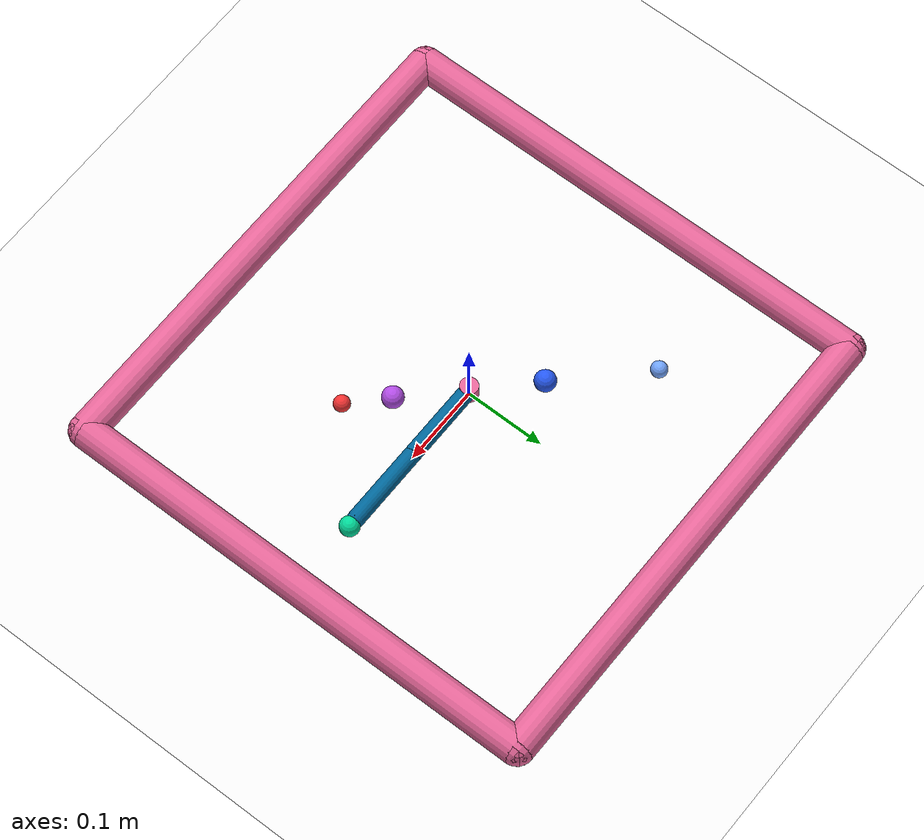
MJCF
<mujoco model="reacher_task_agnostic">
  <compiler angle="radian" inertiafromgeom="true"/>
  <default>
    <joint armature="1" damping="1" limited="true"/>
    <geom friction="1 0.1 0.1" rgba="0.7 0.7 0 1"/>
  </default>

  <option gravity="0 0 -9.81" integrator="RK4" timestep="0.01"/>

  <worldbody>
    <geom name="ground" type="plane" pos="0 0 0" size="1 1 10" rgba="0.95 0.95 0.95 1" conaffinity="0" contype="0"/>
    <geom name="sideS" type="capsule" fromto="-.3 -.3 .01 .3 -.3 .01" size=".02" rgba="0.9 0.4 0.6 1" conaffinity="0" contype="0"/>
    <geom name="sideE" type="capsule" fromto=" .3 -.3 .01 .3  .3 .01" size=".02" rgba="0.9 0.4 0.6 1" conaffinity="0" contype="0"/>
    <geom name="sideN" type="capsule" fromto="-.3  .3 .01 .3  .3 .01" size=".02" rgba="0.9 0.4 0.6 1" conaffinity="0" contype="0"/>
    <geom name="sideW" type="capsule" fromto="-.3 -.3 .01 -.3 .3 .01" size=".02" rgba="0.9 0.4 0.6 1" conaffinity="0" contype="0"/>

    <geom name="root" type="cylinder" fromto="0 0 0 0 0 0.02" size=".011" rgba="0.9 0.4 0.6 1" conaffinity="0" contype="0"/>
    <body name="body0" pos="0 0 .01">
      <joint name="joint0" type="hinge" axis="0 0 1" limited="false"/>
      <geom name="link0" type="capsule" fromto="0 0 0 0.1 0 0" size=".01" rgba="0.0 0.4 0.6 1" conaffinity="0" contype="0"/>
      <body name="body1" pos="0.1 0 0">
        <joint name="joint1" type="hinge" axis="0 0 1" range="-3.0 3.0"/>
        <geom name="link1" type="capsule" fromto="0 0 0 0.1 0 0" size=".01" rgba="0.0 0.4 0.6 1" conaffinity="0" contype="0"/>
        <body name="fingertip" pos="0.11 0 0">
          <geom name="fingertip" type="sphere" size=".012" rgba="0.0 0.85 0.6 1" contype="1" conaffinity="1"/>
        </body>
      </body>
    </body>

    <body name="target" pos=".1 -.1 .01">
      <joint name="target_x" type="slide" axis="1 0 0" range="-.27 .27" armature="0" damping="0" stiffness="0"/>
      <joint name="target_y" type="slide" axis="0 1 0" range="-.27 .27" armature="0" damping="0" stiffness="0"/>
      <geom name="target" type="sphere" size=".010" rgba="0.95 0.2 0.2 1" contype="0" conaffinity="0"/>
    </body>

    <body name="blue_goal" pos="-.15 .15 .01">
      <joint name="blue_goal_x" type="slide" axis="1 0 0" range="-.27 .27" armature="0" damping="0" stiffness="0"/>
      <joint name="blue_goal_y" type="slide" axis="0 1 0" range="-.27 .27" armature="0" damping="0" stiffness="0"/>
      <geom name="blue_goal_geom" type="sphere" size=".010" rgba="0.45 0.65 1.0 1" contype="0" conaffinity="0"/>
    </body>

    <body name="blue_object" pos="-.06 .06 .012">
      <joint name="blue_obj_x" type="slide" axis="1 0 0" range="-.26 .26" armature="0" damping="0.35" stiffness="0"/>
      <joint name="blue_obj_y" type="slide" axis="0 1 0" range="-.26 .26" armature="0" damping="0.35" stiffness="0"/>
      <geom name="blue_object_geom" type="sphere" size=".013" rgba="0.15 0.35 0.95 1" contype="1" conaffinity="1" friction="0.95 0.01 0.01"/>
    </body>

    <body name="purple_ball" pos=".06 -.06 .012">
      <joint name="purple_x" type="slide" axis="1 0 0" range="-.26 .26" armature="0" damping="0.35" stiffness="0"/>
      <joint name="purple_y" type="slide" axis="0 1 0" range="-.26 .26" armature="0" damping="0.35" stiffness="0"/>
      <geom name="purple_ball_geom" type="sphere" size=".013" rgba="0.7 0.3 0.9 1" contype="1" conaffinity="1" friction="0.95 0.01 0.01"/>
    </body>
  </worldbody>

  <actuator>
    <motor joint="joint0" ctrllimited="true" ctrlrange="-1.0 1.0" gear="200.0"/>
    <motor joint="joint1" ctrllimited="true" ctrlrange="-1.0 1.0" gear="200.0"/>
  </actuator>
</mujoco>
